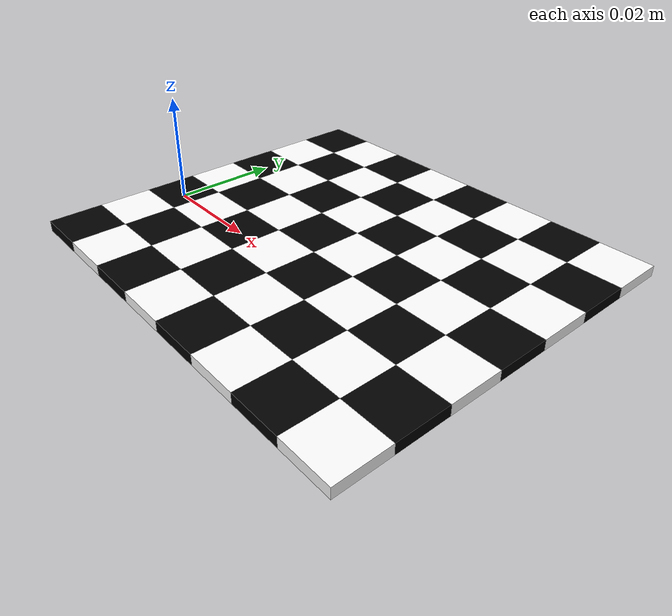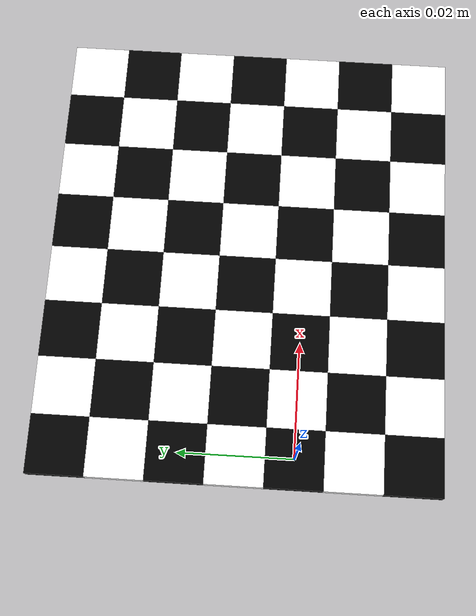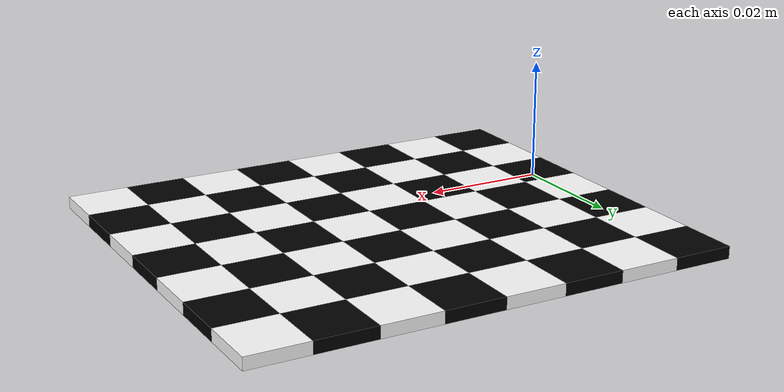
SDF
<?xml version='1.0'?>
<sdf version="1.4">
  <model name="small_checkerboard">
    <pose>0 0 0 0 0 0</pose>
    <static>false</static>
    <link name="small_checkerboard">
      <pose>0.0 -0.02 0.0 0.0 0.0 0.0</pose>
      <inertial>
        <mass>0.01</mass>
        <inertia>          <!-- interias are tricky to compute -->
          <!-- http://answers.gazebosim.org/question/4372/the-inertia-matrix-explained/ -->
          <ixx>0.083</ixx>          <!-- for a box: ixx = 0.083 * mass * (y*y + z*z) -->
          <ixy>0.0</ixy>          <!-- for a box: ixy = 0 -->
          <ixz>0.0</ixz>          <!-- for a box: ixz = 0 -->
          <iyy>0.083</iyy>          <!-- for a box: iyy = 0.083 * mass * (x*x + z*z) -->
          <iyz>0.0</iyz>          <!-- for a box: iyz = 0 -->
          <izz>0.083</izz>          <!-- for a box: izz = 0.083 * mass * (x*x + y*y) -->
        </inertia>
      </inertial>
      <collision name="collision">
        <geometry>
          <box>
            <size>0.01 0.01 0.002</size>
          </box>
        </geometry>
      </collision>
      <visual name="sqr11">
        <geometry>
          <box>
            <size>0.01 0.01 0.002</size>
          </box>
        </geometry>
        <material>
          <ambient>0 0 0 1</ambient>
          <diffuse>0 0 0 1</diffuse>
          <specular>0.1 0.1 0.1 1</specular>
          <emissive>0 0 0 0</emissive>
        </material>
      </visual>
      <visual name="sqr12">
        <pose>0.01 0.0 0.0 0.0 0.0 0.0</pose>
        <geometry>
          <box>
            <size>0.01 0.01 0.002</size>
          </box>
        </geometry>
        <material>
          <ambient>1 1 1 1</ambient>
          <diffuse>1 1 1 1</diffuse>
          <specular>0.1 0.1 0.1 1</specular>
          <emissive>0 0 0 0</emissive>
        </material>
      </visual>
      <visual name="sqr13">
        <pose>0.02 0.0 0.0 0.0 0.0 0.0</pose>
        <geometry>
          <box>
            <size>0.01 0.01 0.002</size>
          </box>
        </geometry>
        <material>
          <ambient>0 0 0 1</ambient>
          <diffuse>0 0 0 1</diffuse>
          <specular>0.1 0.1 0.1 1</specular>
          <emissive>0 0 0 0</emissive>
        </material>
      </visual>
      <visual name="sqr14">
        <pose>0.03 0.0 0.0 0.0 0.0 0.0</pose>
        <geometry>
          <box>
            <size>0.01 0.01 0.002</size>
          </box>
        </geometry>
        <material>
          <ambient>1 1 1 1</ambient>
          <diffuse>1 1 1 1</diffuse>
          <specular>0.1 0.1 0.1 1</specular>
          <emissive>0 0 0 0</emissive>
        </material>
      </visual>
      <visual name="sqr15">
        <pose>0.04 0.0 0.0 0.0 0.0 0.0</pose>
        <geometry>
          <box>
            <size>0.01 0.01 0.002</size>
          </box>
        </geometry>
        <material>
          <ambient>0 0 0 1</ambient>
          <diffuse>0 0 0 1</diffuse>
          <specular>0.1 0.1 0.1 1</specular>
          <emissive>0 0 0 0</emissive>
        </material>
      </visual>
      <visual name="sqr16">
        <pose>0.05 0.0 0.0 0.0 0.0 0.0</pose>
        <geometry>
          <box>
            <size>0.01 0.01 0.002</size>
          </box>
        </geometry>
        <material>
          <ambient>1 1 1 1</ambient>
          <diffuse>1 1 1 1</diffuse>
          <specular>0.1 0.1 0.1 1</specular>
          <emissive>0 0 0 0</emissive>
        </material>
      </visual>
      <visual name="sqr17">
        <pose>0.06 0.0 0.0 0.0 0.0 0.0</pose>
        <geometry>
          <box>
            <size>0.01 0.01 0.002</size>
          </box>
        </geometry>
        <material>
          <ambient>0 0 0 1</ambient>
          <diffuse>0 0 0 1</diffuse>
          <specular>0.1 0.1 0.1 1</specular>
          <emissive>0 0 0 0</emissive>
        </material>
      </visual>
      <visual name="sqr18">
        <pose>0.07 0.0 0.0 0.0 0.0 0.0</pose>
        <geometry>
          <box>
            <size>0.01 0.01 0.002</size>
          </box>
        </geometry>
        <material>
          <ambient>1 1 1 1</ambient>
          <diffuse>1 1 1 1</diffuse>
          <specular>0.1 0.1 0.1 1</specular>
          <emissive>0 0 0 0</emissive>
        </material>
      </visual>
      <visual name="sqr31">
        <pose>0.0 0.02 0.0 0.0 0.0 0.0</pose>
        <geometry>
          <box>
            <size>0.01 0.01 0.002</size>
          </box>
        </geometry>
        <material>
          <ambient>0 0 0 1</ambient>
          <diffuse>0 0 0 1</diffuse>
          <specular>0.1 0.1 0.1 1</specular>
          <emissive>0 0 0 0</emissive>
        </material>
      </visual>
      <visual name="sqr32">
        <pose>0.01 0.02 0.0 0.0 0.0 0.0</pose>
        <geometry>
          <box>
            <size>0.01 0.01 0.002</size>
          </box>
        </geometry>
        <material>
          <ambient>1 1 1 1</ambient>
          <diffuse>1 1 1 1</diffuse>
          <specular>0.1 0.1 0.1 1</specular>
          <emissive>0 0 0 0</emissive>
        </material>
      </visual>
      <visual name="sqr33">
        <pose>0.02 0.02 0.0 0.0 0.0 0.0</pose>
        <geometry>
          <box>
            <size>0.01 0.01 0.002</size>
          </box>
        </geometry>
        <material>
          <ambient>0 0 0 1</ambient>
          <diffuse>0 0 0 1</diffuse>
          <specular>0.1 0.1 0.1 1</specular>
          <emissive>0 0 0 0</emissive>
        </material>
      </visual>
      <visual name="sqr34">
        <pose>0.03 0.02 0.0 0.0 0.0 0.0</pose>
        <geometry>
          <box>
            <size>0.01 0.01 0.002</size>
          </box>
        </geometry>
        <material>
          <ambient>1 1 1 1</ambient>
          <diffuse>1 1 1 1</diffuse>
          <specular>0.1 0.1 0.1 1</specular>
          <emissive>0 0 0 0</emissive>
        </material>
      </visual>
      <visual name="sqr35">
        <pose>0.04 0.02 0.0 0.0 0.0 0.0</pose>
        <geometry>
          <box>
            <size>0.01 0.01 0.002</size>
          </box>
        </geometry>
        <material>
          <ambient>0 0 0 1</ambient>
          <diffuse>0 0 0 1</diffuse>
          <specular>0.1 0.1 0.1 1</specular>
          <emissive>0 0 0 0</emissive>
        </material>
      </visual>
      <visual name="sqr36">
        <pose>0.05 0.02 0.0 0.0 0.0 0.0</pose>
        <geometry>
          <box>
            <size>0.01 0.01 0.002</size>
          </box>
        </geometry>
        <material>
          <ambient>1 1 1 1</ambient>
          <diffuse>1 1 1 1</diffuse>
          <specular>0.1 0.1 0.1 1</specular>
          <emissive>0 0 0 0</emissive>
        </material>
      </visual>
      <visual name="sqr37">
        <pose>0.06 0.02 0.0 0.0 0.0 0.0</pose>
        <geometry>
          <box>
            <size>0.01 0.01 0.002</size>
          </box>
        </geometry>
        <material>
          <ambient>0 0 0 1</ambient>
          <diffuse>0 0 0 1</diffuse>
          <specular>0.1 0.1 0.1 1</specular>
          <emissive>0 0 0 0</emissive>
        </material>
      </visual>
      <visual name="sqr38">
        <pose>0.07 0.02 0.0 0.0 0.0 0.0</pose>
        <geometry>
          <box>
            <size>0.01 0.01 0.002</size>
          </box>
        </geometry>
        <material>
          <ambient>1 1 1 1</ambient>
          <diffuse>1 1 1 1</diffuse>
          <specular>0.1 0.1 0.1 1</specular>
          <emissive>0 0 0 0</emissive>
        </material>
      </visual>
      <visual name="sqr51">
        <pose>0.0 0.04 0.0 0.0 0.0 0.0</pose>
        <geometry>
          <box>
            <size>0.01 0.01 0.002</size>
          </box>
        </geometry>
        <material>
          <ambient>0 0 0 1</ambient>
          <diffuse>0 0 0 1</diffuse>
          <specular>0.1 0.1 0.1 1</specular>
          <emissive>0 0 0 0</emissive>
        </material>
      </visual>
      <visual name="sqr52">
        <pose>0.01 0.04 0.0 0.0 0.0 0.0</pose>
        <geometry>
          <box>
            <size>0.01 0.01 0.002</size>
          </box>
        </geometry>
        <material>
          <ambient>1 1 1 1</ambient>
          <diffuse>1 1 1 1</diffuse>
          <specular>0.1 0.1 0.1 1</specular>
          <emissive>0 0 0 0</emissive>
        </material>
      </visual>
      <visual name="sqr53">
        <pose>0.02 0.04 0.0 0.0 0.0 0.0</pose>
        <geometry>
          <box>
            <size>0.01 0.01 0.002</size>
          </box>
        </geometry>
        <material>
          <ambient>0 0 0 1</ambient>
          <diffuse>0 0 0 1</diffuse>
          <specular>0.1 0.1 0.1 1</specular>
          <emissive>0 0 0 0</emissive>
        </material>
      </visual>
      <visual name="sqr54">
        <pose>0.03 0.04 0.0 0.0 0.0 0.0</pose>
        <geometry>
          <box>
            <size>0.01 0.01 0.002</size>
          </box>
        </geometry>
        <material>
          <ambient>1 1 1 1</ambient>
          <diffuse>1 1 1 1</diffuse>
          <specular>0.1 0.1 0.1 1</specular>
          <emissive>0 0 0 0</emissive>
        </material>
      </visual>
      <visual name="sqr55">
        <pose>0.04 0.04 0.0 0.0 0.0 0.0</pose>
        <geometry>
          <box>
            <size>0.01 0.01 0.002</size>
          </box>
        </geometry>
        <material>
          <ambient>0 0 0 1</ambient>
          <diffuse>0 0 0 1</diffuse>
          <specular>0.1 0.1 0.1 1</specular>
          <emissive>0 0 0 0</emissive>
        </material>
      </visual>
      <visual name="sqr56">
        <pose>0.05 0.04 0.0 0.0 0.0 0.0</pose>
        <geometry>
          <box>
            <size>0.01 0.01 0.002</size>
          </box>
        </geometry>
        <material>
          <ambient>1 1 1 1</ambient>
          <diffuse>1 1 1 1</diffuse>
          <specular>0.1 0.1 0.1 1</specular>
          <emissive>0 0 0 0</emissive>
        </material>
      </visual>
      <visual name="sqr57">
        <pose>0.06 0.04 0.0 0.0 0.0 0.0</pose>
        <geometry>
          <box>
            <size>0.01 0.01 0.002</size>
          </box>
        </geometry>
        <material>
          <ambient>0 0 0 1</ambient>
          <diffuse>0 0 0 1</diffuse>
          <specular>0.1 0.1 0.1 1</specular>
          <emissive>0 0 0 0</emissive>
        </material>
      </visual>
      <visual name="sqr58">
        <pose>0.07 0.04 0.0 0.0 0.0 0.0</pose>
        <geometry>
          <box>
            <size>0.01 0.01 0.002</size>
          </box>
        </geometry>
        <material>
          <ambient>1 1 1 1</ambient>
          <diffuse>1 1 1 1</diffuse>
          <specular>0.1 0.1 0.1 1</specular>
          <emissive>0 0 0 0</emissive>
        </material>
      </visual>
      <visual name="sqr71">
        <pose>0.0 0.06 0.0 0.0 0.0 0.0</pose>
        <geometry>
          <box>
            <size>0.01 0.01 0.002</size>
          </box>
        </geometry>
        <material>
          <ambient>0 0 0 1</ambient>
          <diffuse>0 0 0 1</diffuse>
          <specular>0.1 0.1 0.1 1</specular>
          <emissive>0 0 0 0</emissive>
        </material>
      </visual>
      <visual name="sqr72">
        <pose>0.01 0.06 0.0 0.0 0.0 0.0</pose>
        <geometry>
          <box>
            <size>0.01 0.01 0.002</size>
          </box>
        </geometry>
        <material>
          <ambient>1 1 1 1</ambient>
          <diffuse>1 1 1 1</diffuse>
          <specular>0.1 0.1 0.1 1</specular>
          <emissive>0 0 0 0</emissive>
        </material>
      </visual>
      <visual name="sqr73">
        <pose>0.02 0.06 0.0 0.0 0.0 0.0</pose>
        <geometry>
          <box>
            <size>0.01 0.01 0.002</size>
          </box>
        </geometry>
        <material>
          <ambient>0 0 0 1</ambient>
          <diffuse>0 0 0 1</diffuse>
          <specular>0.1 0.1 0.1 1</specular>
          <emissive>0 0 0 0</emissive>
        </material>
      </visual>
      <visual name="sqr74">
        <pose>0.03 0.06 0.0 0.0 0.0 0.0</pose>
        <geometry>
          <box>
            <size>0.01 0.01 0.002</size>
          </box>
        </geometry>
        <material>
          <ambient>1 1 1 1</ambient>
          <diffuse>1 1 1 1</diffuse>
          <specular>0.1 0.1 0.1 1</specular>
          <emissive>0 0 0 0</emissive>
        </material>
      </visual>
      <visual name="sqr75">
        <pose>0.04 0.06 0.0 0.0 0.0 0.0</pose>
        <geometry>
          <box>
            <size>0.01 0.01 0.002</size>
          </box>
        </geometry>
        <material>
          <ambient>0 0 0 1</ambient>
          <diffuse>0 0 0 1</diffuse>
          <specular>0.1 0.1 0.1 1</specular>
          <emissive>0 0 0 0</emissive>
        </material>
      </visual>
      <visual name="sqr76">
        <pose>0.05 0.06 0.0 0.0 0.0 0.0</pose>
        <geometry>
          <box>
            <size>0.01 0.01 0.002</size>
          </box>
        </geometry>
        <material>
          <ambient>1 1 1 1</ambient>
          <diffuse>1 1 1 1</diffuse>
          <specular>0.1 0.1 0.1 1</specular>
          <emissive>0 0 0 0</emissive>
        </material>
      </visual>
      <visual name="sqr77">
        <pose>0.06 0.06 0.0 0.0 0.0 0.0</pose>
        <geometry>
          <box>
            <size>0.01 0.01 0.002</size>
          </box>
        </geometry>
        <material>
          <ambient>0 0 0 1</ambient>
          <diffuse>0 0 0 1</diffuse>
          <specular>0.1 0.1 0.1 1</specular>
          <emissive>0 0 0 0</emissive>
        </material>
      </visual>
      <visual name="sqr78">
        <pose>0.07 0.06 0.0 0.0 0.0 0.0</pose>
        <geometry>
          <box>
            <size>0.01 0.01 0.002</size>
          </box>
        </geometry>
        <material>
          <ambient>1 1 1 1</ambient>
          <diffuse>1 1 1 1</diffuse>
          <specular>0.1 0.1 0.1 1</specular>
          <emissive>0 0 0 0</emissive>
        </material>
      </visual>
      <visual name="sqr21">
        <pose>0.0 0.01 0.0 0.0 0.0 0.0</pose>
        <geometry>
          <box>
            <size>0.01 0.01 0.002</size>
          </box>
        </geometry>
        <material>
          <ambient>1 1 1 1</ambient>
          <diffuse>1 1 1 1</diffuse>
          <specular>0.1 0.1 0.1 1</specular>
          <emissive>0 0 0 0</emissive>
        </material>
      </visual>
      <visual name="sqr22">
        <pose>0.01 0.01 0.0 0.0 0.0 0.0</pose>
        <geometry>
          <box>
            <size>0.01 0.01 0.002</size>
          </box>
        </geometry>
        <material>
          <ambient>0 0 0 1</ambient>
          <diffuse>0 0 0 1</diffuse>
          <specular>0.1 0.1 0.1 1</specular>
          <emissive>0 0 0 0</emissive>
        </material>
      </visual>
      <visual name="sqr23">
        <pose>0.02 0.01 0.0 0.0 0.0 0.0</pose>
        <geometry>
          <box>
            <size>0.01 0.01 0.002</size>
          </box>
        </geometry>
        <material>
          <ambient>1 1 1 1</ambient>
          <diffuse>1 1 1 1</diffuse>
          <specular>0.1 0.1 0.1 1</specular>
          <emissive>0 0 0 0</emissive>
        </material>
      </visual>
      <visual name="sqr24">
        <pose>0.03 0.01 0.0 0.0 0.0 0.0</pose>
        <geometry>
          <box>
            <size>0.01 0.01 0.002</size>
          </box>
        </geometry>
        <material>
          <ambient>0 0 0 1</ambient>
          <diffuse>0 0 0 1</diffuse>
          <specular>0.1 0.1 0.1 1</specular>
          <emissive>0 0 0 0</emissive>
        </material>
      </visual>
      <visual name="sqr25">
        <pose>0.04 0.01 0.0 0.0 0.0 0.0</pose>
        <geometry>
          <box>
            <size>0.01 0.01 0.002</size>
          </box>
        </geometry>
        <material>
          <ambient>1 1 1 1</ambient>
          <diffuse>1 1 1 1</diffuse>
          <specular>0.1 0.1 0.1 1</specular>
          <emissive>0 0 0 0</emissive>
        </material>
      </visual>
      <visual name="sqr26">
        <pose>0.05 0.01 0.0 0.0 0.0 0.0</pose>
        <geometry>
          <box>
            <size>0.01 0.01 0.002</size>
          </box>
        </geometry>
        <material>
          <ambient>0 0 0 1</ambient>
          <diffuse>0 0 0 1</diffuse>
          <specular>0.1 0.1 0.1 1</specular>
          <emissive>0 0 0 0</emissive>
        </material>
      </visual>
      <visual name="sqr27">
        <pose>0.06 0.01 0.0 0.0 0.0 0.0</pose>
        <geometry>
          <box>
            <size>0.01 0.01 0.002</size>
          </box>
        </geometry>
        <material>
          <ambient>1 1 1 1</ambient>
          <diffuse>1 1 1 1</diffuse>
          <specular>0.1 0.1 0.1 1</specular>
          <emissive>0 0 0 0</emissive>
        </material>
      </visual>
      <visual name="sqr28">
        <pose>0.07 0.01 0.0 0.0 0.0 0.0</pose>
        <geometry>
          <box>
            <size>0.01 0.01 0.002</size>
          </box>
        </geometry>
        <material>
          <ambient>0 0 0 1</ambient>
          <diffuse>0 0 0 1</diffuse>
          <specular>0.1 0.1 0.1 1</specular>
          <emissive>0 0 0 0</emissive>
        </material>
      </visual>
      <visual name="sqr41">
        <pose>0.0 0.03 0.0 0.0 0.0 0.0</pose>
        <geometry>
          <box>
            <size>0.01 0.01 0.002</size>
          </box>
        </geometry>
        <material>
          <ambient>1 1 1 1</ambient>
          <diffuse>1 1 1 1</diffuse>
          <specular>0.1 0.1 0.1 1</specular>
          <emissive>0 0 0 0</emissive>
        </material>
      </visual>
      <visual name="sqr42">
        <pose>0.01 0.03 0.0 0.0 0.0 0.0</pose>
        <geometry>
          <box>
            <size>0.01 0.01 0.002</size>
          </box>
        </geometry>
        <material>
          <ambient>0 0 0 1</ambient>
          <diffuse>0 0 0 1</diffuse>
          <specular>0.1 0.1 0.1 1</specular>
          <emissive>0 0 0 0</emissive>
        </material>
      </visual>
      <visual name="sqr43">
        <pose>0.02 0.03 0.0 0.0 0.0 0.0</pose>
        <geometry>
          <box>
            <size>0.01 0.01 0.002</size>
          </box>
        </geometry>
        <material>
          <ambient>1 1 1 1</ambient>
          <diffuse>1 1 1 1</diffuse>
          <specular>0.1 0.1 0.1 1</specular>
          <emissive>0 0 0 0</emissive>
        </material>
      </visual>
      <visual name="sqr44">
        <pose>0.03 0.03 0.0 0.0 0.0 0.0</pose>
        <geometry>
          <box>
            <size>0.01 0.01 0.002</size>
          </box>
        </geometry>
        <material>
          <ambient>0 0 0 1</ambient>
          <diffuse>0 0 0 1</diffuse>
          <specular>0.1 0.1 0.1 1</specular>
          <emissive>0 0 0 0</emissive>
        </material>
      </visual>
      <visual name="sqr45">
        <pose>0.04 0.03 0.0 0.0 0.0 0.0</pose>
        <geometry>
          <box>
            <size>0.01 0.01 0.002</size>
          </box>
        </geometry>
        <material>
          <ambient>1 1 1 1</ambient>
          <diffuse>1 1 1 1</diffuse>
          <specular>0.1 0.1 0.1 1</specular>
          <emissive>0 0 0 0</emissive>
        </material>
      </visual>
      <visual name="sqr46">
        <pose>0.05 0.03 0.0 0.0 0.0 0.0</pose>
        <geometry>
          <box>
            <size>0.01 0.01 0.002</size>
          </box>
        </geometry>
        <material>
          <ambient>0 0 0 1</ambient>
          <diffuse>0 0 0 1</diffuse>
          <specular>0.1 0.1 0.1 1</specular>
          <emissive>0 0 0 0</emissive>
        </material>
      </visual>
      <visual name="sqr47">
        <pose>0.06 0.03 0.0 0.0 0.0 0.0</pose>
        <geometry>
          <box>
            <size>0.01 0.01 0.002</size>
          </box>
        </geometry>
        <material>
          <ambient>1 1 1 1</ambient>
          <diffuse>1 1 1 1</diffuse>
          <specular>0.1 0.1 0.1 1</specular>
          <emissive>0 0 0 0</emissive>
        </material>
      </visual>
      <visual name="sqr48">
        <pose>0.07 0.03 0.0 0.0 0.0 0.0</pose>
        <geometry>
          <box>
            <size>0.01 0.01 0.002</size>
          </box>
        </geometry>
        <material>
          <ambient>0 0 0 1</ambient>
          <diffuse>0 0 0 1</diffuse>
          <specular>0.1 0.1 0.1 1</specular>
          <emissive>0 0 0 0</emissive>
        </material>
      </visual>
      <visual name="sqr61">
        <pose>0.0 0.05 0.0 0.0 0.0 0.0</pose>
        <geometry>
          <box>
            <size>0.01 0.01 0.002</size>
          </box>
        </geometry>
        <material>
          <ambient>1 1 1 1</ambient>
          <diffuse>1 1 1 1</diffuse>
          <specular>0.1 0.1 0.1 1</specular>
          <emissive>0 0 0 0</emissive>
        </material>
      </visual>
      <visual name="sqr62">
        <pose>0.01 0.05 0.0 0.0 0.0 0.0</pose>
        <geometry>
          <box>
            <size>0.01 0.01 0.002</size>
          </box>
        </geometry>
        <material>
          <ambient>0 0 0 1</ambient>
          <diffuse>0 0 0 1</diffuse>
          <specular>0.1 0.1 0.1 1</specular>
          <emissive>0 0 0 0</emissive>
        </material>
      </visual>
      <visual name="sqr63">
        <pose>0.02 0.05 0.0 0.0 0.0 0.0</pose>
        <geometry>
          <box>
            <size>0.01 0.01 0.002</size>
          </box>
        </geometry>
        <material>
          <ambient>1 1 1 1</ambient>
          <diffuse>1 1 1 1</diffuse>
          <specular>0.1 0.1 0.1 1</specular>
          <emissive>0 0 0 0</emissive>
        </material>
      </visual>
      <visual name="sqr64">
        <pose>0.03 0.05 0.0 0.0 0.0 0.0</pose>
        <geometry>
          <box>
            <size>0.01 0.01 0.002</size>
          </box>
        </geometry>
        <material>
          <ambient>0 0 0 1</ambient>
          <diffuse>0 0 0 1</diffuse>
          <specular>0.1 0.1 0.1 1</specular>
          <emissive>0 0 0 0</emissive>
        </material>
      </visual>
      <visual name="sqr65">
        <pose>0.04 0.05 0.0 0.0 0.0 0.0</pose>
        <geometry>
          <box>
            <size>0.01 0.01 0.002</size>
          </box>
        </geometry>
        <material>
          <ambient>1 1 1 1</ambient>
          <diffuse>1 1 1 1</diffuse>
          <specular>0.1 0.1 0.1 1</specular>
          <emissive>0 0 0 0</emissive>
        </material>
      </visual>
      <visual name="sqr66">
        <pose>0.05 0.05 0.0 0.0 0.0 0.0</pose>
        <geometry>
          <box>
            <size>0.01 0.01 0.002</size>
          </box>
        </geometry>
        <material>
          <ambient>0 0 0 1</ambient>
          <diffuse>0 0 0 1</diffuse>
          <specular>0.1 0.1 0.1 1</specular>
          <emissive>0 0 0 0</emissive>
        </material>
      </visual>
      <visual name="sqr67">
        <pose>0.06 0.05 0.0 0.0 0.0 0.0</pose>
        <geometry>
          <box>
            <size>0.01 0.01 0.002</size>
          </box>
        </geometry>
        <material>
          <ambient>1 1 1 1</ambient>
          <diffuse>1 1 1 1</diffuse>
          <specular>0.1 0.1 0.1 1</specular>
          <emissive>0 0 0 0</emissive>
        </material>
      </visual>
      <visual name="sqr68">
        <pose>0.07 0.05 0.0 0.0 0.0 0.0</pose>
        <geometry>
          <box>
            <size>0.01 0.01 0.002</size>
          </box>
        </geometry>
        <material>
          <ambient>0 0 0 1</ambient>
          <diffuse>0 0 0 1</diffuse>
          <specular>0.1 0.1 0.1 1</specular>
          <emissive>0 0 0 0</emissive>
        </material>
      </visual>
    </link>
  </model>
</sdf>
